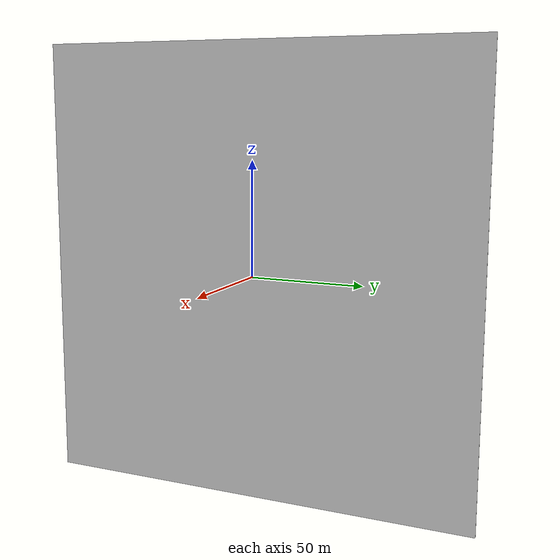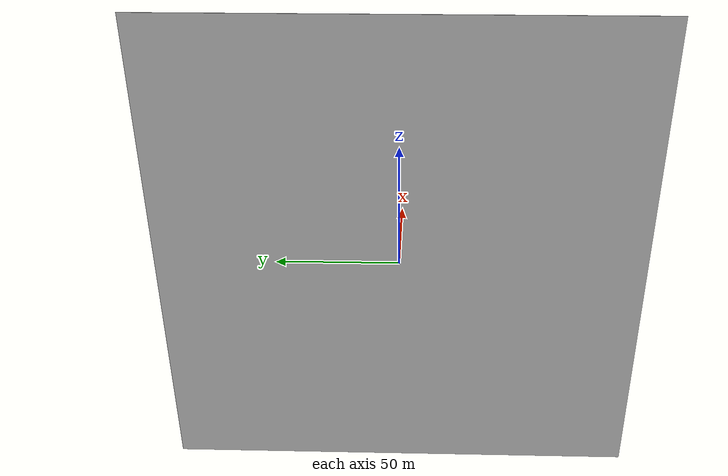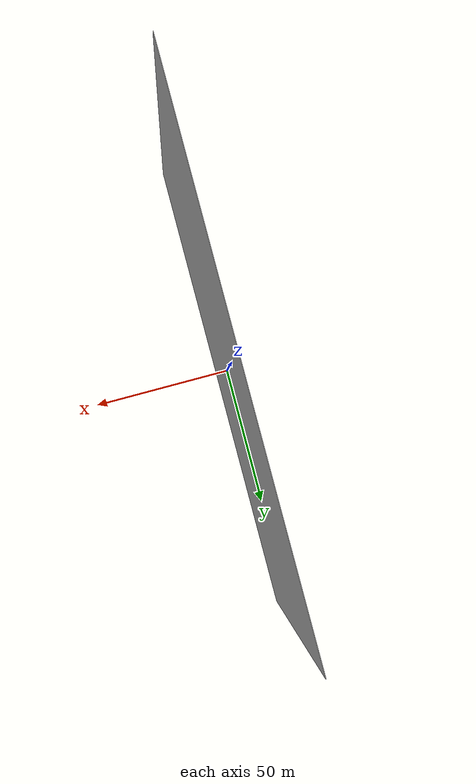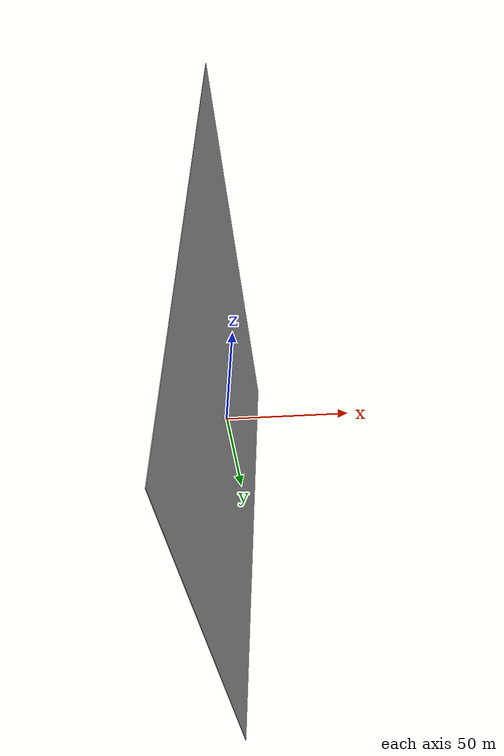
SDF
<?xml version="1.0" ?>
<sdf version="1.4">
  <model name="concrete_wall">
    <static>true</static>
    <link name="link">
      <collision name="collision">
        <geometry>
          <plane>
            <normal>1 0 0</normal>
            <size>200 200</size>
          </plane>
        </geometry>
      </collision>
      <visual name="visual">
        <cast_shadows>false</cast_shadows>
	       <geometry>
          <plane>
            <normal>1 0 0</normal>
            <size>200 200</size>
          </plane>
        </geometry>
        <material>
          <script>
            <uri>model://materials/scripts/concrete.material</uri>
            <uri>model://materials/textures</uri>
            <name>vrc/concrete</name>
          </script>
        </material>
      </visual>
    </link>
  </model>
</sdf>
